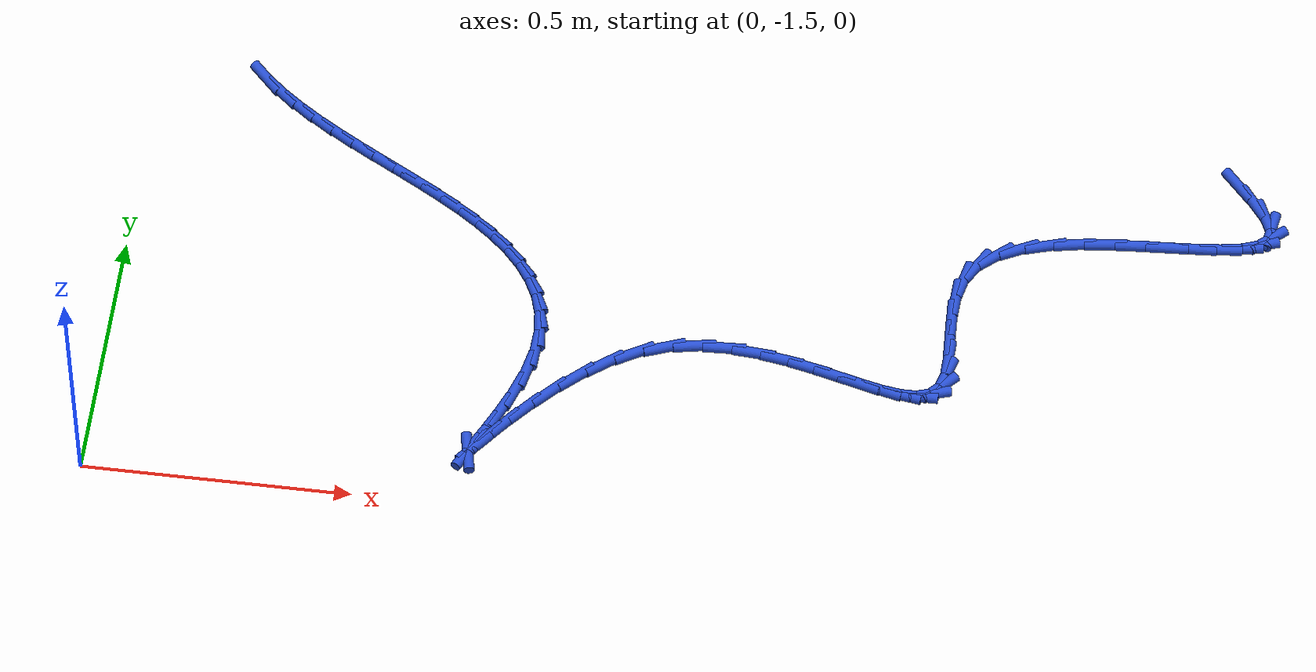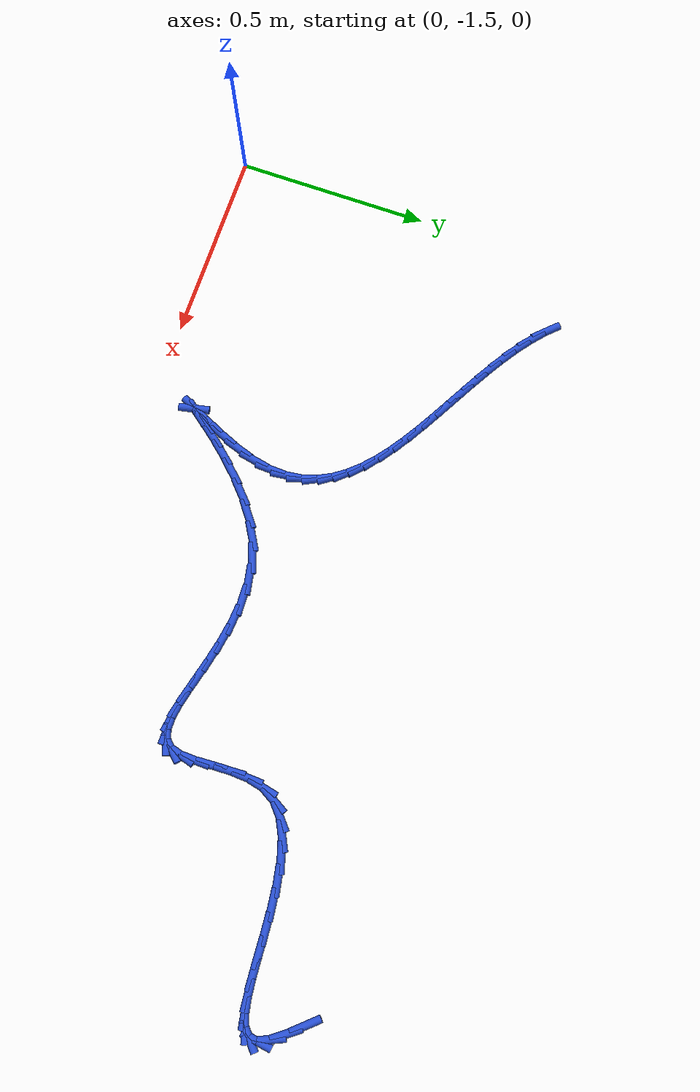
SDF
<sdf version="1.6">
 <world name="default">
  <model name="ground_plane">
   <static>1</static>
   <link name="link">
    <collision name="collision">
     <geometry><plane><normal>0 0 1</normal><size>100 100</size></plane></geometry>
     <surface><friction><ode><mu>100</mu><mu2>50</mu2></ode></friction></surface>
    </collision>
    <visual name="visual">
     <cast_shadows>0</cast_shadows>
     <geometry><plane><normal>0 0 1</normal><size>100 100</size></plane></geometry>
     <material>
      <script><uri>file://media/materials/scripts/gazebo.material</uri><name>Gazebo/WhiteGlow</name></script>
     </material>
    </visual>
   </link>
  </model>
  <model name="line">
   <link name="link_125">
    <pose>2.0390582639472457 -0.6072770128906181 0.01 0 1.57 -0.8455075255057641</pose>
    <collision name="collision">
     <geometry><cylinder><radius>0.01</radius><length>0.08</length></cylinder></geometry>
    </collision>
    <visual name="visual">
     <material>
      <script><name>Gazebo/Blue</name><uri>file://media/materials/scripts/gazebo.material</uri></script>
     </material>
     <geometry><cylinder><radius>0.01</radius><length>0.08</length></cylinder></geometry>
    </visual>
   </link>
   <link name="link_126">
    <pose>2.071403966659899 -0.6437652715181704 0.01 0 1.57 -0.9324417181694122</pose>
    <collision name="collision">
     <geometry><cylinder><radius>0.01</radius><length>0.08</length></cylinder></geometry>
    </collision>
    <visual name="visual">
     <material>
      <script><name>Gazebo/Blue</name><uri>file://media/materials/scripts/gazebo.material</uri></script>
     </material>
     <geometry><cylinder><radius>0.01</radius><length>0.08</length></cylinder></geometry>
    </visual>
   </link>
   <link name="link_127">
    <pose>2.0958724022298414 -0.6767420689871342 0.01 0 1.57 -1.1551626880510213</pose>
    <collision name="collision">
     <geometry><cylinder><radius>0.01</radius><length>0.08</length></cylinder></geometry>
    </collision>
    <visual name="visual">
     <material>
      <script><name>Gazebo/Blue</name><uri>file://media/materials/scripts/gazebo.material</uri></script>
     </material>
     <geometry><cylinder><radius>0.01</radius><length>0.08</length></cylinder></geometry>
    </visual>
   </link>
   <link name="link_128">
    <pose>2.108065993982653 -0.7043702870739743 0.01 0 1.57 1.420625792036966</pose>
    <collision name="collision">
     <geometry><cylinder><radius>0.01</radius><length>0.08</length></cylinder></geometry>
    </collision>
    <visual name="visual">
     <material>
      <script><name>Gazebo/Blue</name><uri>file://media/materials/scripts/gazebo.material</uri></script>
     </material>
     <geometry><cylinder><radius>0.01</radius><length>0.08</length></cylinder></geometry>
    </visual>
   </link>
   <link name="link_129">
    <pose>2.1048828384333027 -0.7254076465135811 0.01 0 1.57 0.7197836091942256</pose>
    <collision name="collision">
     <geometry><cylinder><radius>0.01</radius><length>0.08</length></cylinder></geometry>
    </collision>
    <visual name="visual">
     <material>
      <script><name>Gazebo/Blue</name><uri>file://media/materials/scripts/gazebo.material</uri></script>
     </material>
     <geometry><cylinder><radius>0.01</radius><length>0.08</length></cylinder></geometry>
    </visual>
   </link>
   <link name="link_130">
    <pose>2.087552849484756 -0.7406005900150803 0.01 0 1.57 0.34394730586821765</pose>
    <collision name="collision">
     <geometry><cylinder><radius>0.01</radius><length>0.08</length></cylinder></geometry>
    </collision>
    <visual name="visual">
     <material>
      <script><name>Gazebo/Blue</name><uri>file://media/materials/scripts/gazebo.material</uri></script>
     </material>
     <geometry><cylinder><radius>0.01</radius><length>0.08</length></cylinder></geometry>
    </visual>
   </link>
   <link name="link_131">
    <pose>2.0582101574999427 -0.7511106828521774 0.01 0 1.57 0.17633845613980745</pose>
    <collision name="collision">
     <geometry><cylinder><radius>0.01</radius><length>0.08</length></cylinder></geometry>
    </collision>
    <visual name="visual">
     <material>
      <script><name>Gazebo/Blue</name><uri>file://media/materials/scripts/gazebo.material</uri></script>
     </material>
     <geometry><cylinder><radius>0.01</radius><length>0.08</length></cylinder></geometry>
    </visual>
   </link>
   <link name="link_132">
    <pose>2.018988892841791 -0.7580994902985778 0.01 0 1.57 0.09824581269476994</pose>
    <collision name="collision">
     <geometry><cylinder><radius>0.01</radius><length>0.08</length></cylinder></geometry>
    </collision>
    <visual name="visual">
     <material>
      <script><name>Gazebo/Blue</name><uri>file://media/materials/scripts/gazebo.material</uri></script>
     </material>
     <geometry><cylinder><radius>0.01</radius><length>0.08</length></cylinder></geometry>
    </visual>
   </link>
   <link name="link_133">
    <pose>1.972023185873232 -0.7627285776279864 0.01 0 1.57 0.06516421060748588</pose>
    <collision name="collision">
     <geometry><cylinder><radius>0.01</radius><length>0.08</length></cylinder></geometry>
    </collision>
    <visual name="visual">
     <material>
      <script><name>Gazebo/Blue</name><uri>file://media/materials/scripts/gazebo.material</uri></script>
     </material>
     <geometry><cylinder><radius>0.01</radius><length>0.08</length></cylinder></geometry>
    </visual>
   </link>
   <link name="link_134">
    <pose>1.9194471669571946 -0.7661595101141084 0.01 0 1.57 0.060482957460148194</pose>
    <collision name="collision">
     <geometry><cylinder><radius>0.01</radius><length>0.08</length></cylinder></geometry>
    </collision>
    <visual name="visual">
     <material>
      <script><name>Gazebo/Blue</name><uri>file://media/materials/scripts/gazebo.material</uri></script>
     </material>
     <geometry><cylinder><radius>0.01</radius><length>0.08</length></cylinder></geometry>
    </visual>
   </link>
   <link name="link_135">
    <pose>1.8633949664566087 -0.7695538530306497 0.01 0 1.57 0.07857952285042591</pose>
    <collision name="collision">
     <geometry><cylinder><radius>0.01</radius><length>0.08</length></cylinder></geometry>
    </collision>
    <visual name="visual">
     <material>
      <script><name>Gazebo/Blue</name><uri>file://media/materials/scripts/gazebo.material</uri></script>
     </material>
     <geometry><cylinder><radius>0.01</radius><length>0.08</length></cylinder></geometry>
    </visual>
   </link>
   <link name="link_136">
    <pose>1.8060007147344033 -0.7740731716513152 0.01 0 1.57 0.11966576257007691</pose>
    <collision name="collision">
     <geometry><cylinder><radius>0.01</radius><length>0.08</length></cylinder></geometry>
    </collision>
    <visual name="visual">
     <material>
      <script><name>Gazebo/Blue</name><uri>file://media/materials/scripts/gazebo.material</uri></script>
     </material>
     <geometry><cylinder><radius>0.01</radius><length>0.08</length></cylinder></geometry>
    </visual>
   </link>
   <link name="link_137">
    <pose>1.7493985421535083 -0.7808790312498101 0.01 0 1.57 0.18876030389139242</pose>
    <collision name="collision">
     <geometry><cylinder><radius>0.01</radius><length>0.08</length></cylinder></geometry>
    </collision>
    <visual name="visual">
     <material>
      <script><name>Gazebo/Blue</name><uri>file://media/materials/scripts/gazebo.material</uri></script>
     </material>
     <geometry><cylinder><radius>0.01</radius><length>0.08</length></cylinder></geometry>
    </visual>
   </link>
   <link name="link_138">
    <pose>1.6957225790768518 -0.7911329970998401 0.01 0 1.57 0.29671255227092636</pose>
    <collision name="collision">
     <geometry><cylinder><radius>0.01</radius><length>0.08</length></cylinder></geometry>
    </collision>
    <visual name="visual">
     <material>
      <script><name>Gazebo/Blue</name><uri>file://media/materials/scripts/gazebo.material</uri></script>
     </material>
     <geometry><cylinder><radius>0.01</radius><length>0.08</length></cylinder></geometry>
    </visual>
   </link>
   <link name="link_139">
    <pose>1.647106955867366 -0.8059966344751102 0.01 0 1.57 0.46218444076685194</pose>
    <collision name="collision">
     <geometry><cylinder><radius>0.01</radius><length>0.08</length></cylinder></geometry>
    </collision>
    <visual name="visual">
     <material>
      <script><name>Gazebo/Blue</name><uri>file://media/materials/scripts/gazebo.material</uri></script>
     </material>
     <geometry><cylinder><radius>0.01</radius><length>0.08</length></cylinder></geometry>
    </visual>
   </link>
   <link name="link_140">
    <pose>1.6056858028879797 -0.8266315086493258 0.01 0 1.57 0.709698993675818</pose>
    <collision name="collision">
     <geometry><cylinder><radius>0.01</radius><length>0.08</length></cylinder></geometry>
    </collision>
    <visual name="visual">
     <material>
      <script><name>Gazebo/Blue</name><uri>file://media/materials/scripts/gazebo.material</uri></script>
     </material>
     <geometry><cylinder><radius>0.01</radius><length>0.08</length></cylinder></geometry>
    </visual>
   </link>
   <link name="link_141">
    <pose>1.573593250501621 -0.8541991848961917 0.01 0 1.57 1.043946517313362</pose>
    <collision name="collision">
     <geometry><cylinder><radius>0.01</radius><length>0.08</length></cylinder></geometry>
    </collision>
    <visual name="visual">
     <material>
      <script><name>Gazebo/Blue</name><uri>file://media/materials/scripts/gazebo.material</uri></script>
     </material>
     <geometry><cylinder><radius>0.01</radius><length>0.08</length></cylinder></geometry>
    </visual>
   </link>
   <link name="link_142">
    <pose>1.552885392056669 -0.8897984669598754 0.01 0 1.57 1.3459652974213998</pose>
    <collision name="collision">
     <geometry><cylinder><radius>0.01</radius><length>0.08</length></cylinder></geometry>
    </collision>
    <visual name="visual">
     <material>
      <script><name>Gazebo/Blue</name><uri>file://media/materials/scripts/gazebo.material</uri></script>
     </material>
     <geometry><cylinder><radius>0.01</radius><length>0.08</length></cylinder></geometry>
    </visual>
   </link>
   <link name="link_143">
    <pose>1.5431160631434182 -0.9325157094269213 0.01 0 1.57 1.5224861946049317</pose>
    <collision name="collision">
     <geometry><cylinder><radius>0.01</radius><length>0.08</length></cylinder></geometry>
    </collision>
    <visual name="visual">
     <material>
      <script><name>Gazebo/Blue</name><uri>file://media/materials/scripts/gazebo.material</uri></script>
     </material>
     <geometry><cylinder><radius>0.01</radius><length>0.08</length></cylinder></geometry>
    </visual>
   </link>
   <link name="link_144">
    <pose>1.5408664056365156 -0.9790464680364745 0.01 0 1.57 -1.535030550731759</pose>
    <collision name="collision">
     <geometry><cylinder><radius>0.01</radius><length>0.08</length></cylinder></geometry>
    </collision>
    <visual name="visual">
     <material>
      <script><name>Gazebo/Blue</name><uri>file://media/materials/scripts/gazebo.material</uri></script>
     </material>
     <geometry><cylinder><radius>0.01</radius><length>0.08</length></cylinder></geometry>
    </visual>
   </link>
   <link name="link_145">
    <pose>1.5425445609881965 -1.0259471623602647 0.01 0 1.57 -1.5248727800146584</pose>
    <collision name="collision">
     <geometry><cylinder><radius>0.01</radius><length>0.08</length></cylinder></geometry>
    </collision>
    <visual name="visual">
     <material>
      <script><name>Gazebo/Blue</name><uri>file://media/materials/scripts/gazebo.material</uri></script>
     </material>
     <geometry><cylinder><radius>0.01</radius><length>0.08</length></cylinder></geometry>
    </visual>
   </link>
   <link name="link_146">
    <pose>1.544558670650697 -1.0697742119700175 0.01 0 1.57 1.5375252955832601</pose>
    <collision name="collision">
     <geometry><cylinder><radius>0.01</radius><length>0.08</length></cylinder></geometry>
    </collision>
    <visual name="visual">
     <material>
      <script><name>Gazebo/Blue</name><uri>file://media/materials/scripts/gazebo.material</uri></script>
     </material>
     <geometry><cylinder><radius>0.01</radius><length>0.08</length></cylinder></geometry>
    </visual>
   </link>
   <link name="link_147">
    <pose>1.543316876076253 -1.1070840364374626 0.01 0 1.57 1.2872672832572838</pose>
    <collision name="collision">
     <geometry><cylinder><radius>0.01</radius><length>0.08</length></cylinder></geometry>
    </collision>
    <visual name="visual">
     <material>
      <script><name>Gazebo/Blue</name><uri>file://media/materials/scripts/gazebo.material</uri></script>
     </material>
     <geometry><cylinder><radius>0.01</radius><length>0.08</length></cylinder></geometry>
    </visual>
   </link>
   <link name="link_148">
    <pose>1.5353171658164602 -1.134538685611658 0.01 0 1.57 0.8023159270730561</pose>
    <collision name="collision">
     <geometry><cylinder><radius>0.01</radius><length>0.08</length></cylinder></geometry>
    </collision>
    <visual name="visual">
     <material>
      <script><name>Gazebo/Blue</name><uri>file://media/materials/scripts/gazebo.material</uri></script>
     </material>
     <geometry><cylinder><radius>0.01</radius><length>0.08</length></cylinder></geometry>
    </visual>
   </link>
   <link name="link_149">
    <pose>1.5191509431329413 -1.1512613681098598 0.01 0 1.57 0.310865248201835</pose>
    <collision name="collision">
     <geometry><cylinder><radius>0.01</radius><length>0.08</length></cylinder></geometry>
    </collision>
    <visual name="visual">
     <material>
      <script><name>Gazebo/Blue</name><uri>file://media/materials/scripts/gazebo.material</uri></script>
     </material>
     <geometry><cylinder><radius>0.01</radius><length>0.08</length></cylinder></geometry>
    </visual>
   </link>
   <link name="link_150">
    <pose>1.4955180981196912 -1.1588541711156515 0.01 0 1.57 0.005747342439242189</pose>
    <collision name="collision">
     <geometry><cylinder><radius>0.01</radius><length>0.08</length></cylinder></geometry>
    </collision>
    <visual name="visual">
     <material>
      <script><name>Gazebo/Blue</name><uri>file://media/materials/scripts/gazebo.material</uri></script>
     </material>
     <geometry><cylinder><radius>0.01</radius><length>0.08</length></cylinder></geometry>
    </visual>
   </link>
   <link name="link_151">
    <pose>1.4652113824431625 -1.1590283561067471 0.01 0 1.57 -0.1517263137308197</pose>
    <collision name="collision">
     <geometry><cylinder><radius>0.01</radius><length>0.08</length></cylinder></geometry>
    </collision>
    <visual name="visual">
     <material>
      <script><name>Gazebo/Blue</name><uri>file://media/materials/scripts/gazebo.material</uri></script>
     </material>
     <geometry><cylinder><radius>0.01</radius><length>0.08</length></cylinder></geometry>
    </visual>
   </link>
   <link name="link_152">
    <pose>1.4290235477698132 -1.1534951845608614 0.01 0 1.57 -0.22689060643196068</pose>
    <collision name="collision">
     <geometry><cylinder><radius>0.01</radius><length>0.08</length></cylinder></geometry>
    </collision>
    <visual name="visual">
     <material>
      <script><name>Gazebo/Blue</name><uri>file://media/materials/scripts/gazebo.material</uri></script>
     </material>
     <geometry><cylinder><radius>0.01</radius><length>0.08</length></cylinder></geometry>
    </visual>
   </link>
   <link name="link_153">
    <pose>1.387747345766098 -1.1439659179557098 0.01 0 1.57 -0.2536573281857725</pose>
    <collision name="collision">
     <geometry><cylinder><radius>0.01</radius><length>0.08</length></cylinder></geometry>
    </collision>
    <visual name="visual">
     <material>
      <script><name>Gazebo/Blue</name><uri>file://media/materials/scripts/gazebo.material</uri></script>
     </material>
     <geometry><cylinder><radius>0.01</radius><length>0.08</length></cylinder></geometry>
    </visual>
   </link>
   <link name="link_154">
    <pose>1.3421755280984717 -1.132151817769006 0.01 0 1.57 -0.24725962956237163</pose>
    <collision name="collision">
     <geometry><cylinder><radius>0.01</radius><length>0.08</length></cylinder></geometry>
    </collision>
    <visual name="visual">
     <material>
      <script><name>Gazebo/Blue</name><uri>file://media/materials/scripts/gazebo.material</uri></script>
     </material>
     <geometry><cylinder><radius>0.01</radius><length>0.08</length></cylinder></geometry>
    </visual>
   </link>
   <link name="link_155">
    <pose>1.29310084643339 -1.1197641454784657 0.01 0 1.57 -0.21392089131547243</pose>
    <collision name="collision">
     <geometry><cylinder><radius>0.01</radius><length>0.08</length></cylinder></geometry>
    </collision>
    <visual name="visual">
     <material>
      <script><name>Gazebo/Blue</name><uri>file://media/materials/scripts/gazebo.material</uri></script>
     </material>
     <geometry><cylinder><radius>0.01</radius><length>0.08</length></cylinder></geometry>
    </visual>
   </link>
   <link name="link_156">
    <pose>1.2413160524373084 -1.1085141625618034 0.01 0 1.57 -0.15517979078206515</pose>
    <collision name="collision">
     <geometry><cylinder><radius>0.01</radius><length>0.08</length></cylinder></geometry>
    </collision>
    <visual name="visual">
     <material>
      <script><name>Gazebo/Blue</name><uri>file://media/materials/scripts/gazebo.material</uri></script>
     </material>
     <geometry><cylinder><radius>0.01</radius><length>0.08</length></cylinder></geometry>
    </visual>
   </link>
   <link name="link_157">
    <pose>1.1876138977766804 -1.1001131304967335 0.01 0 1.57 -0.06993947738450862</pose>
    <collision name="collision">
     <geometry><cylinder><radius>0.01</radius><length>0.08</length></cylinder></geometry>
    </collision>
    <visual name="visual">
     <material>
      <script><name>Gazebo/Blue</name><uri>file://media/materials/scripts/gazebo.material</uri></script>
     </material>
     <geometry><cylinder><radius>0.01</radius><length>0.08</length></cylinder></geometry>
    </visual>
   </link>
   <link name="link_158">
    <pose>1.1327871341179636 -1.096272310760971 0.01 0 1.57 0.04403813080327031</pose>
    <collision name="collision">
     <geometry><cylinder><radius>0.01</radius><length>0.08</length></cylinder></geometry>
    </collision>
    <visual name="visual">
     <material>
      <script><name>Gazebo/Blue</name><uri>file://media/materials/scripts/gazebo.material</uri></script>
     </material>
     <geometry><cylinder><radius>0.01</radius><length>0.08</length></cylinder></geometry>
    </visual>
   </link>
   <link name="link_159">
    <pose>1.0776285131276133 -1.0987029648322313 0.01 0 1.57 0.18812931878909545</pose>
    <collision name="collision">
     <geometry><cylinder><radius>0.01</radius><length>0.08</length></cylinder></geometry>
    </collision>
    <visual name="visual">
     <material>
      <script><name>Gazebo/Blue</name><uri>file://media/materials/scripts/gazebo.material</uri></script>
     </material>
     <geometry><cylinder><radius>0.01</radius><length>0.08</length></cylinder></geometry>
    </visual>
   </link>
   <link name="link_160">
    <pose>1.0229307864720838 -1.109116354188228 0.01 0 1.57 0.3595784175387177</pose>
    <collision name="collision">
     <geometry><cylinder><radius>0.01</radius><length>0.08</length></cylinder></geometry>
    </collision>
    <visual name="visual">
     <material>
      <script><name>Gazebo/Blue</name><uri>file://media/materials/scripts/gazebo.material</uri></script>
     </material>
     <geometry><cylinder><radius>0.01</radius><length>0.08</length></cylinder></geometry>
    </visual>
   </link>
   <link name="link_161">
    <pose>0.9694872466125494 -1.129206936061821 0.01 0 1.57 0.5266978716039827</pose>
    <collision name="collision">
     <geometry><cylinder><radius>0.01</radius><length>0.08</length></cylinder></geometry>
    </collision>
    <visual name="visual">
     <material>
      <script><name>Gazebo/Blue</name><uri>file://media/materials/scripts/gazebo.material</uri></script>
     </material>
     <geometry><cylinder><radius>0.01</radius><length>0.08</length></cylinder></geometry>
    </visual>
   </link>
   <link name="link_162">
    <pose>0.9181428703397547 -1.1590631680346126 0.01 0 1.57 0.6509873008955264</pose>
    <collision name="collision">
     <geometry><cylinder><radius>0.01</radius><length>0.08</length></cylinder></geometry>
    </collision>
    <visual name="visual">
     <material>
      <script><name>Gazebo/Blue</name><uri>file://media/materials/scripts/gazebo.material</uri></script>
     </material>
     <geometry><cylinder><radius>0.01</radius><length>0.08</length></cylinder></geometry>
    </visual>
   </link>
   <link name="link_163">
    <pose>0.8698363550258961 -1.1958613054331624 0.01 0 1.57 0.7417284049753917</pose>
    <collision name="collision">
     <geometry><cylinder><radius>0.01</radius><length>0.08</length></cylinder></geometry>
    </collision>
    <visual name="visual">
     <material>
      <script><name>Gazebo/Blue</name><uri>file://media/materials/scripts/gazebo.material</uri></script>
     </material>
     <geometry><cylinder><radius>0.01</radius><length>0.08</length></cylinder></geometry>
    </visual>
   </link>
   <link name="link_164">
    <pose>0.82551629145479 -1.2364701832160787 0.01 0 1.57 0.8089880609665571</pose>
    <collision name="collision">
     <geometry><cylinder><radius>0.01</radius><length>0.08</length></cylinder></geometry>
    </collision>
    <visual name="visual">
     <material>
      <script><name>Gazebo/Blue</name><uri>file://media/materials/scripts/gazebo.material</uri></script>
     </material>
     <geometry><cylinder><radius>0.01</radius><length>0.08</length></cylinder></geometry>
    </visual>
   </link>
   <link name="link_165">
    <pose>0.786131270410257 -1.2777586363419702 0.01 0 1.57 0.8590221702951959</pose>
    <collision name="collision">
     <geometry><cylinder><radius>0.01</radius><length>0.08</length></cylinder></geometry>
    </collision>
    <visual name="visual">
     <material>
      <script><name>Gazebo/Blue</name><uri>file://media/materials/scripts/gazebo.material</uri></script>
     </material>
     <geometry><cylinder><radius>0.01</radius><length>0.08</length></cylinder></geometry>
    </visual>
   </link>
   <link name="link_166">
    <pose>0.7526298826761137 -1.3165954997694458 0.01 0 1.57 0.8948486189714995</pose>
    <collision name="collision">
     <geometry><cylinder><radius>0.01</radius><length>0.08</length></cylinder></geometry>
    </collision>
    <visual name="visual">
     <material>
      <script><name>Gazebo/Blue</name><uri>file://media/materials/scripts/gazebo.material</uri></script>
     </material>
     <geometry><cylinder><radius>0.01</radius><length>0.08</length></cylinder></geometry>
    </visual>
   </link>
   <link name="link_167">
    <pose>0.7259607190361776 -1.3498496084571134 0.01 0 1.57 0.9148119761586633</pose>
    <collision name="collision">
     <geometry><cylinder><radius>0.01</radius><length>0.08</length></cylinder></geometry>
    </collision>
    <visual name="visual">
     <material>
      <script><name>Gazebo/Blue</name><uri>file://media/materials/scripts/gazebo.material</uri></script>
     </material>
     <geometry><cylinder><radius>0.01</radius><length>0.08</length></cylinder></geometry>
    </visual>
   </link>
   <link name="link_168">
    <pose>0.7070723702742672 -1.3743897973635824 0.01 0 1.57 0.8959180395788863</pose>
    <collision name="collision">
     <geometry><cylinder><radius>0.01</radius><length>0.08</length></cylinder></geometry>
    </collision>
    <visual name="visual">
     <material>
      <script><name>Gazebo/Blue</name><uri>file://media/materials/scripts/gazebo.material</uri></script>
     </material>
     <geometry><cylinder><radius>0.01</radius><length>0.08</length></cylinder></geometry>
    </visual>
   </link>
   <link name="link_169">
    <pose>0.6969134271742002 -1.3870849014474618 0.01 0 1.57 -1.3630002934634238</pose>
    <collision name="collision">
     <geometry><cylinder><radius>0.01</radius><length>0.08</length></cylinder></geometry>
    </collision>
    <visual name="visual">
     <material>
      <script><name>Gazebo/Blue</name><uri>file://media/materials/scripts/gazebo.material</uri></script>
     </material>
     <geometry><cylinder><radius>0.01</radius><length>0.08</length></cylinder></geometry>
    </visual>
   </link>
   <link name="link_170">
    <pose>0.6964324739486626 -1.3848037663445205 0.01 0 1.57 1.1154425135397128</pose>
    <collision name="collision">
     <geometry><cylinder><radius>0.01</radius><length>0.08</length></cylinder></geometry>
    </collision>
    <visual name="visual">
     <material>
      <script><name>Gazebo/Blue</name><uri>file://media/materials/scripts/gazebo.material</uri></script>
     </material>
     <geometry><cylinder><radius>0.01</radius><length>0.08</length></cylinder></geometry>
    </visual>
   </link>
   <link name="link_171">
    <pose>0.7057860035041618 -1.3657022741769358 0.01 0 1.57 1.109509898068951</pose>
    <collision name="collision">
     <geometry><cylinder><radius>0.01</radius><length>0.08</length></cylinder></geometry>
    </collision>
    <visual name="visual">
     <material>
      <script><name>Gazebo/Blue</name><uri>file://media/materials/scripts/gazebo.material</uri></script>
     </material>
     <geometry><cylinder><radius>0.01</radius><length>0.08</length></cylinder></geometry>
    </visual>
   </link>
   <link name="link_172">
    <pose>0.7221524797529107 -1.3327751835238484 0.01 0 1.57 1.1347788053948449</pose>
    <collision name="collision">
     <geometry><cylinder><radius>0.01</radius><length>0.08</length></cylinder></geometry>
    </collision>
    <visual name="visual">
     <material>
      <script><name>Gazebo/Blue</name><uri>file://media/materials/scripts/gazebo.material</uri></script>
     </material>
     <geometry><cylinder><radius>0.01</radius><length>0.08</length></cylinder></geometry>
    </visual>
   </link>
   <link name="link_173">
    <pose>0.7420106172427102 -1.2901542468391136 0.01 0 1.57 1.180394402441126</pose>
    <collision name="collision">
     <geometry><cylinder><radius>0.01</radius><length>0.08</length></cylinder></geometry>
    </collision>
    <visual name="visual">
     <material>
      <script><name>Gazebo/Blue</name><uri>file://media/materials/scripts/gazebo.material</uri></script>
     </material>
     <geometry><cylinder><radius>0.01</radius><length>0.08</length></cylinder></geometry>
    </visual>
   </link>
   <link name="link_174">
    <pose>0.7618391305213605 -1.241971216576586 0.01 0 1.57 1.2537730344793514</pose>
    <collision name="collision">
     <geometry><cylinder><radius>0.01</radius><length>0.08</length></cylinder></geometry>
    </collision>
    <visual name="visual">
     <material>
      <script><name>Gazebo/Blue</name><uri>file://media/materials/scripts/gazebo.material</uri></script>
     </material>
     <geometry><cylinder><radius>0.01</radius><length>0.08</length></cylinder></geometry>
    </visual>
   </link>
   <link name="link_175">
    <pose>0.7781167341366628 -1.1923578451901196 0.01 0 1.57 1.372551996397023</pose>
    <collision name="collision">
     <geometry><cylinder><radius>0.01</radius><length>0.08</length></cylinder></geometry>
    </collision>
    <visual name="visual">
     <material>
      <script><name>Gazebo/Blue</name><uri>file://media/materials/scripts/gazebo.material</uri></script>
     </material>
     <geometry><cylinder><radius>0.01</radius><length>0.08</length></cylinder></geometry>
    </visual>
   </link>
   <link name="link_176">
    <pose>0.787600888024057 -1.1451454879652572 0.01 0 1.57 1.5262684001516404</pose>
    <collision name="collision">
     <geometry><cylinder><radius>0.01</radius><length>0.08</length></cylinder></geometry>
    </collision>
    <visual name="visual">
     <material>
      <script><name>Gazebo/Blue</name><uri>file://media/materials/scripts/gazebo.material</uri></script>
     </material>
     <geometry><cylinder><radius>0.01</radius><length>0.08</length></cylinder></geometry>
    </visual>
   </link>
   <link name="link_177">
    <pose>0.7895467860882556 -1.1014737526471898 0.01 0 1.57 -1.4472031866384556</pose>
    <collision name="collision">
     <geometry><cylinder><radius>0.01</radius><length>0.08</length></cylinder></geometry>
    </collision>
    <visual name="visual">
     <material>
      <script><name>Gazebo/Blue</name><uri>file://media/materials/scripts/gazebo.material</uri></script>
     </material>
     <geometry><cylinder><radius>0.01</radius><length>0.08</length></cylinder></geometry>
    </visual>
   </link>
   <link name="link_178">
    <pose>0.784526691455441 -1.0610628733084173 0.01 0 1.57 -1.2751985851599508</pose>
    <collision name="collision">
     <geometry><cylinder><radius>0.01</radius><length>0.08</length></cylinder></geometry>
    </collision>
    <visual name="visual">
     <material>
      <script><name>Gazebo/Blue</name><uri>file://media/materials/scripts/gazebo.material</uri></script>
     </material>
     <geometry><cylinder><radius>0.01</radius><length>0.08</length></cylinder></geometry>
    </visual>
   </link>
   <link name="link_179">
    <pose>0.7731247120951839 -1.0236203191199515 0.01 0 1.57 -1.1113829108711668</pose>
    <collision name="collision">
     <geometry><cylinder><radius>0.01</radius><length>0.08</length></cylinder></geometry>
    </collision>
    <visual name="visual">
     <material>
      <script><name>Gazebo/Blue</name><uri>file://media/materials/scripts/gazebo.material</uri></script>
     </material>
     <geometry><cylinder><radius>0.01</radius><length>0.08</length></cylinder></geometry>
    </visual>
   </link>
   <link name="link_180">
    <pose>0.7559249559770557 -0.9888535592528064 0.01 0 1.57 -0.9653752264045262</pose>
    <collision name="collision">
     <geometry><cylinder><radius>0.01</radius><length>0.08</length></cylinder></geometry>
    </collision>
    <visual name="visual">
     <material>
      <script><name>Gazebo/Blue</name><uri>file://media/materials/scripts/gazebo.material</uri></script>
     </material>
     <geometry><cylinder><radius>0.01</radius><length>0.08</length></cylinder></geometry>
    </visual>
   </link>
   <link name="link_181">
    <pose>0.7335115310706268 -0.9564700628779944 0.01 0 1.57 -0.8420173692863507</pose>
    <collision name="collision">
     <geometry><cylinder><radius>0.01</radius><length>0.08</length></cylinder></geometry>
    </collision>
    <visual name="visual">
     <material>
      <script><name>Gazebo/Blue</name><uri>file://media/materials/scripts/gazebo.material</uri></script>
     </material>
     <geometry><cylinder><radius>0.01</radius><length>0.08</length></cylinder></geometry>
    </visual>
   </link>
   <link name="link_182">
    <pose>0.7064685453454688 -0.926177299166529 0.01 0 1.57 -0.7418917957377579</pose>
    <collision name="collision">
     <geometry><cylinder><radius>0.01</radius><length>0.08</length></cylinder></geometry>
    </collision>
    <visual name="visual">
     <material>
      <script><name>Gazebo/Blue</name><uri>file://media/materials/scripts/gazebo.material</uri></script>
     </material>
     <geometry><cylinder><radius>0.01</radius><length>0.08</length></cylinder></geometry>
    </visual>
   </link>
   <link name="link_183">
    <pose>0.6753801067711518 -0.8976827372894224 0.01 0 1.57 -0.6631467788154148</pose>
    <collision name="collision">
     <geometry><cylinder><radius>0.01</radius><length>0.08</length></cylinder></geometry>
    </collision>
    <visual name="visual">
     <material>
      <script><name>Gazebo/Blue</name><uri>file://media/materials/scripts/gazebo.material</uri></script>
     </material>
     <geometry><cylinder><radius>0.01</radius><length>0.08</length></cylinder></geometry>
    </visual>
   </link>
   <link name="link_184">
    <pose>0.6408303233172482 -0.8706938464176893 0.01 0 1.57 -0.603097426423091</pose>
    <collision name="collision">
     <geometry><cylinder><radius>0.01</radius><length>0.08</length></cylinder></geometry>
    </collision>
    <visual name="visual">
     <material>
      <script><name>Gazebo/Blue</name><uri>file://media/materials/scripts/gazebo.material</uri></script>
     </material>
     <geometry><cylinder><radius>0.01</radius><length>0.08</length></cylinder></geometry>
    </visual>
   </link>
   <link name="link_185">
    <pose>0.6034033029533284 -0.8449180957223416 0.01 0 1.57 -0.5591431256848063</pose>
    <collision name="collision">
     <geometry><cylinder><radius>0.01</radius><length>0.08</length></cylinder></geometry>
    </collision>
    <visual name="visual">
     <material>
      <script><name>Gazebo/Blue</name><uri>file://media/materials/scripts/gazebo.material</uri></script>
     </material>
     <geometry><cylinder><radius>0.01</radius><length>0.08</length></cylinder></geometry>
    </visual>
   </link>
   <link name="link_186">
    <pose>0.5636831536489634 -0.8200629543743926 0.01 0 1.57 -0.5291551730054396</pose>
    <collision name="collision">
     <geometry><cylinder><radius>0.01</radius><length>0.08</length></cylinder></geometry>
    </collision>
    <visual name="visual">
     <material>
      <script><name>Gazebo/Blue</name><uri>file://media/materials/scripts/gazebo.material</uri></script>
     </material>
     <geometry><cylinder><radius>0.01</radius><length>0.08</length></cylinder></geometry>
    </visual>
   </link>
   <link name="link_187">
    <pose>0.5222539833737244 -0.7958358915448557 0.01 0 1.57 -0.5115829908533593</pose>
    <collision name="collision">
     <geometry><cylinder><radius>0.01</radius><length>0.08</length></cylinder></geometry>
    </collision>
    <visual name="visual">
     <material>
      <script><name>Gazebo/Blue</name><uri>file://media/materials/scripts/gazebo.material</uri></script>
     </material>
     <geometry><cylinder><radius>0.01</radius><length>0.08</length></cylinder></geometry>
    </visual>
   </link>
   <link name="link_188">
    <pose>0.4796999000971821 -0.7719443764047434 0.01 0 1.57 -0.5054460451771045</pose>
    <collision name="collision">
     <geometry><cylinder><radius>0.01</radius><length>0.08</length></cylinder></geometry>
    </collision>
    <visual name="visual">
     <material>
      <script><name>Gazebo/Blue</name><uri>file://media/materials/scripts/gazebo.material</uri></script>
     </material>
     <geometry><cylinder><radius>0.01</radius><length>0.08</length></cylinder></geometry>
    </visual>
   </link>
   <link name="link_189">
    <pose>0.4366050117889068 -0.7480958781250686 0.01 0 1.57 -0.5102959923397464</pose>
    <collision name="collision">
     <geometry><cylinder><radius>0.01</radius><length>0.08</length></cylinder></geometry>
    </collision>
    <visual name="visual">
     <material>
      <script><name>Gazebo/Blue</name><uri>file://media/materials/scripts/gazebo.material</uri></script>
     </material>
     <geometry><cylinder><radius>0.01</radius><length>0.08</length></cylinder></geometry>
    </visual>
   </link>
   <link name="link_190">
    <pose>0.3935534264184715 -0.7239978658768453 0.01 0 1.57 -0.5261839100735418</pose>
    <collision name="collision">
     <geometry><cylinder><radius>0.01</radius><length>0.08</length></cylinder></geometry>
    </collision>
    <visual name="visual">
     <material>
      <script><name>Gazebo/Blue</name><uri>file://media/materials/scripts/gazebo.material</uri></script>
     </material>
     <geometry><cylinder><radius>0.01</radius><length>0.08</length></cylinder></geometry>
    </visual>
   </link>
   <link name="link_191">
    <pose>0.3511292519554461 -0.6993578088310861 0.01 0 1.57 -0.5536412648764069</pose>
    <collision name="collision">
     <geometry><cylinder><radius>0.01</radius><length>0.08</length></cylinder></geometry>
    </collision>
    <visual name="visual">
     <material>
      <script><name>Gazebo/Blue</name><uri>file://media/materials/scripts/gazebo.material</uri></script>
     </material>
     <geometry><cylinder><radius>0.01</radius><length>0.08</length></cylinder></geometry>
    </visual>
   </link>
   <link name="link_192">
    <pose>0.3099165963694018 -0.673883176158804 0.01 0 1.57 -0.5936667835678578</pose>
    <collision name="collision">
     <geometry><cylinder><radius>0.01</radius><length>0.08</length></cylinder></geometry>
    </collision>
    <visual name="visual">
     <material>
      <script><name>Gazebo/Blue</name><uri>file://media/materials/scripts/gazebo.material</uri></script>
     </material>
     <geometry><cylinder><radius>0.01</radius><length>0.08</length></cylinder></geometry>
    </visual>
   </link>
   <link name="link_193">
    <pose>0.27049956762990945 -0.6472814370310123 0.01 0 1.57 -0.6476938839406986</pose>
    <collision name="collision">
     <geometry><cylinder><radius>0.01</radius><length>0.08</length></cylinder></geometry>
    </collision>
    <visual name="visual">
     <material>
      <script><name>Gazebo/Blue</name><uri>file://media/materials/scripts/gazebo.material</uri></script>
     </material>
     <geometry><cylinder><radius>0.01</radius><length>0.08</length></cylinder></geometry>
    </visual>
   </link>
   <link name="link_194">
    <pose>0.23346227370654024 -0.6192600606187236 0.01 0 1.57 -0.7174866019743932</pose>
    <collision name="collision">
     <geometry><cylinder><radius>0.01</radius><length>0.08</length></cylinder></geometry>
    </collision>
    <visual name="visual">
     <material>
      <script><name>Gazebo/Blue</name><uri>file://media/materials/scripts/gazebo.material</uri></script>
     </material>
     <geometry><cylinder><radius>0.01</radius><length>0.08</length></cylinder></geometry>
    </visual>
   </link>
   <link name="link_195">
    <pose>0.1993888225688651 -0.5895265160929511 0.01 0 1.57 -0.8048526779125783</pose>
    <collision name="collision">
     <geometry><cylinder><radius>0.01</radius><length>0.08</length></cylinder></geometry>
    </collision>
    <visual name="visual">
     <material>
      <script><name>Gazebo/Blue</name><uri>file://media/materials/scripts/gazebo.material</uri></script>
     </material>
     <geometry><cylinder><radius>0.01</radius><length>0.08</length></cylinder></geometry>
    </visual>
   </link>
  </model>
 </world>
</sdf>
